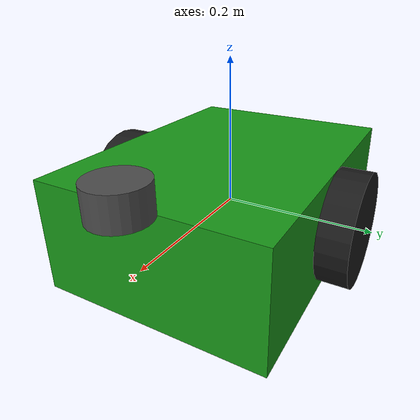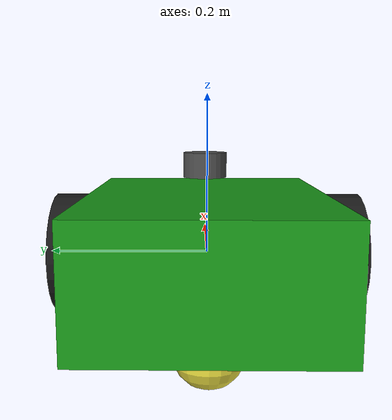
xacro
<?xml version="1.0"?>
<robot name="mower" xmlns:xacro="http://www.ros.org/wiki/xacro">

  <xacro:property name="chassis_length" value="0.40"/>
  <xacro:property name="chassis_width" value="0.30"/>
  <xacro:property name="chassis_height" value="0.15"/>
  <xacro:property name="wheel_radius" value="0.075"/>
  <xacro:property name="wheel_width" value="0.04"/>
  <xacro:property name="wheel_separation" value="0.34"/>

  <link name="base_link">
    <visual>
      <geometry><box size="${chassis_length} ${chassis_width} ${chassis_height}"/></geometry>
      <material name="green"><color rgba="0.1 0.6 0.1 1"/></material>
    </visual>
    <collision>
      <geometry><box size="${chassis_length} ${chassis_width} ${chassis_height}"/></geometry>
    </collision>
    <inertial>
      <mass value="5.0"/>
      <inertia ixx="0.05" ixy="0" ixz="0" iyy="0.08" iyz="0" izz="0.09"/>
    </inertial>
  </link>

  <xacro:macro name="wheel" params="prefix reflect">
    <link name="${prefix}_wheel_link">
      <visual>
        <origin rpy="1.5708 0 0"/>
        <geometry><cylinder radius="${wheel_radius}" length="${wheel_width}"/></geometry>
        <material name="black"><color rgba="0.1 0.1 0.1 1"/></material>
      </visual>
      <collision>
        <origin rpy="1.5708 0 0"/>
        <geometry><cylinder radius="${wheel_radius}" length="${wheel_width}"/></geometry>
      </collision>
      <inertial>
        <mass value="0.5"/>
        <inertia ixx="0.001" ixy="0" ixz="0" iyy="0.001" iyz="0" izz="0.001"/>
      </inertial>
    </link>
    <joint name="${prefix}_wheel_joint" type="continuous">
      <parent link="base_link"/>
      <child link="${prefix}_wheel_link"/>
      <origin xyz="0 ${reflect * wheel_separation / 2} 0" rpy="0 0 0"/>
      <axis xyz="0 1 0"/>
    </joint>
  </xacro:macro>

  <xacro:wheel prefix="left" reflect="1"/>
  <xacro:wheel prefix="right" reflect="-1"/>

  <link name="caster_link">
    <visual>
      <geometry><sphere radius="0.04"/></geometry>
    </visual>
    <collision>
      <geometry><sphere radius="0.04"/></geometry>
    </collision>
    <inertial>
      <mass value="0.1"/>
      <inertia ixx="0.0001" ixy="0" ixz="0" iyy="0.0001" iyz="0" izz="0.0001"/>
    </inertial>
  </link>
  <joint name="caster_joint" type="fixed">
    <parent link="base_link"/>
    <child link="caster_link"/>
    <origin xyz="${-chassis_length/2 + 0.05} 0 ${-chassis_height/2}" rpy="0 0 0"/>
  </joint>

  <link name="lidar_link">
    <visual>
      <geometry><cylinder radius="0.035" length="0.04"/></geometry>
      <material name="grey"><color rgba="0.3 0.3 0.3 1"/></material>
    </visual>
    <inertial>
      <mass value="0.15"/>
      <inertia ixx="0.0001" ixy="0" ixz="0" iyy="0.0001" iyz="0" izz="0.0001"/>
    </inertial>
  </link>
  <joint name="lidar_joint" type="fixed">
    <parent link="base_link"/>
    <child link="lidar_link"/>
    <origin xyz="${chassis_length/2 + 0.02} 0 ${chassis_height/2 + 0.02}" rpy="0 0 0"/>
  </joint>

  <gazebo reference="caster_link">
    <mu1>0.0</mu1>
    <mu2>0.0</mu2>
  </gazebo>

  <gazebo>
    <plugin name="diff_drive" filename="libgazebo_ros_diff_drive.so">
      <ros>
        <remapping>cmd_vel:=cmd_vel_out</remapping>
        <remapping>odom:=odom</remapping>
      </ros>
      <update_rate>30</update_rate>
      <left_joint>left_wheel_joint</left_joint>
      <right_joint>right_wheel_joint</right_joint>
      <wheel_separation>${wheel_separation}</wheel_separation>
      <wheel_diameter>${wheel_radius * 2}</wheel_diameter>
      <max_wheel_torque>20</max_wheel_torque>
      <max_wheel_acceleration>1.0</max_wheel_acceleration>
      <publish_odom>true</publish_odom>
      <publish_odom_tf>true</publish_odom_tf>
      <publish_wheel_tf>true</publish_wheel_tf>
      <odometry_frame>odom</odometry_frame>
      <robot_base_frame>base_link</robot_base_frame>
    </plugin>
  </gazebo>

  <gazebo reference="lidar_link">
    <sensor name="lidar" type="ray">
      <pose>0 0 0 0 0 0</pose>
      <visualize>false</visualize>
      <update_rate>10</update_rate>
      <ray>
        <scan>
          <horizontal>
            <samples>360</samples>
            <resolution>1</resolution>
            <min_angle>-3.14159</min_angle>
            <max_angle>3.14159</max_angle>
          </horizontal>
        </scan>
        <range>
          <min>0.02</min>
          <max>12.0</max>
          <resolution>0.01</resolution>
        </range>
      </ray>
      <plugin name="laser_plugin" filename="libgazebo_ros_ray_sensor.so">
        <ros>
          <remapping>~/out:=scan</remapping>
        </ros>
        <output_type>sensor_msgs/LaserScan</output_type>
        <frame_name>lidar_link</frame_name>
      </plugin>
    </sensor>
  </gazebo>

</robot>
